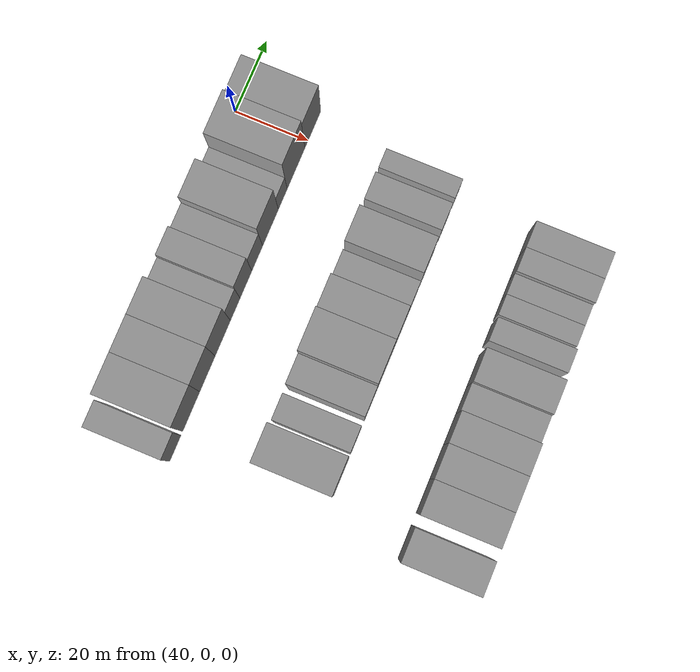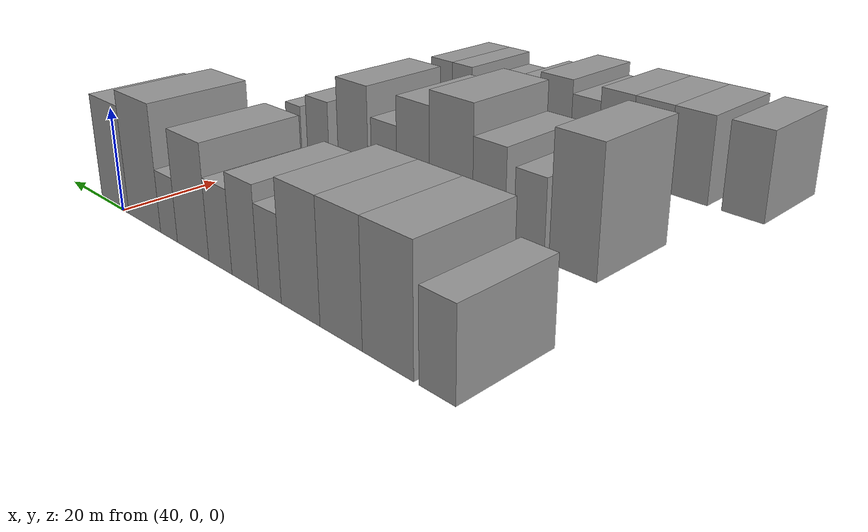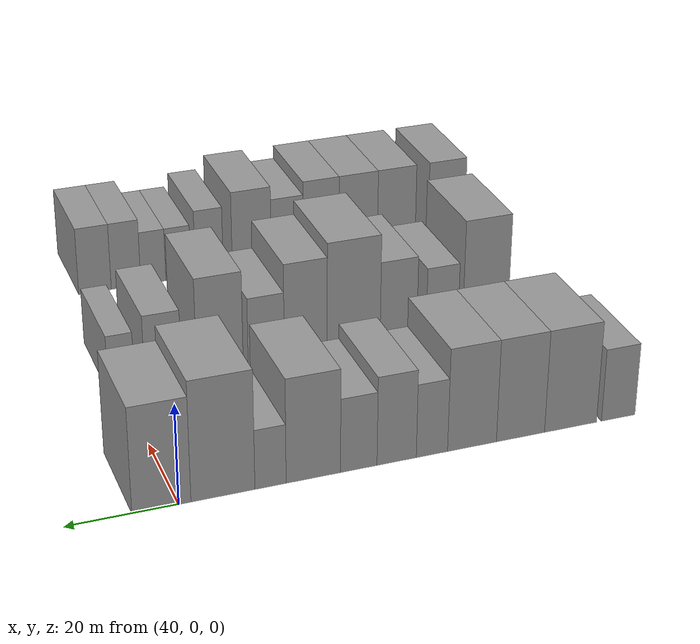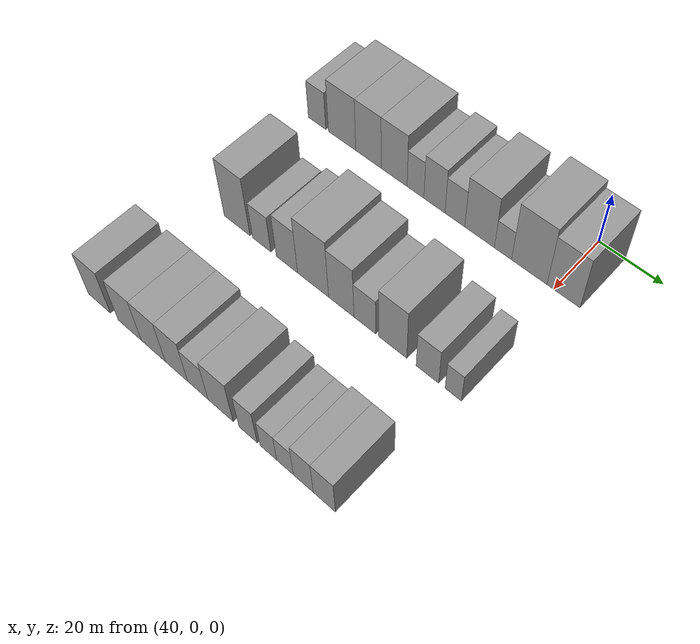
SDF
<sdf version="1.6">
 <world name="default">
  <model name="building_31">
   <static>1</static>
   <pose>50.0000 -83.5519 0 0.000000 0.000000 0.000000</pose>
   <link name="link">
    <pose>0 0 7.50 0 0 0</pose>
    <collision name="collision"><geometry><box><size>20.0000 6.8373 15.0000</size></box></geometry></collision>
    <visual name="visual">
     <cast_shadows>0</cast_shadows>
     <geometry><box><size>20.0000 6.8373 15.0000</size></box></geometry>
     <material>
      <script>
       <uri>model://grey_wall/materials/scripts</uri>
       <uri>model://grey_wall/materials/textures</uri>
       <name>vrc/grey_wall</name>
      </script>
     </material>
    </visual>
   </link>
  </model>
  <model name="building_32">
   <static>1</static>
   <pose>50.0000 -73.8972 0 0.000000 0.000000 0.000000</pose>
   <link name="link">
    <pose>0 0 10.50 0 0 0</pose>
    <collision name="collision"><geometry><box><size>20.0000 10.4721 21.0000</size></box></geometry></collision>
    <visual name="visual">
     <cast_shadows>0</cast_shadows>
     <geometry><box><size>20.0000 10.4721 21.0000</size></box></geometry>
     <material>
      <script>
       <uri>model://grey_wall/materials/scripts</uri>
       <uri>model://grey_wall/materials/textures</uri>
       <name>vrc/grey_wall</name>
      </script>
     </material>
    </visual>
   </link>
  </model>
  <model name="building_33">
   <static>1</static>
   <pose>50.0000 -63.8988 0 0.000000 0.000000 0.000000</pose>
   <link name="link">
    <pose>0 0 10.50 0 0 0</pose>
    <collision name="collision"><geometry><box><size>20.0000 9.5246 21.0000</size></box></geometry></collision>
    <visual name="visual">
     <cast_shadows>0</cast_shadows>
     <geometry><box><size>20.0000 9.5246 21.0000</size></box></geometry>
     <material>
      <script>
       <uri>model://grey_wall/materials/scripts</uri>
       <uri>model://grey_wall/materials/textures</uri>
       <name>vrc/grey_wall</name>
      </script>
     </material>
    </visual>
   </link>
  </model>
  <model name="building_34">
   <static>1</static>
   <pose>50.0000 -54.3746 0 0.000000 0.000000 0.000000</pose>
   <link name="link">
    <pose>0 0 10.50 0 0 0</pose>
    <collision name="collision"><geometry><box><size>20.0000 9.5240 21.0000</size></box></geometry></collision>
    <visual name="visual">
     <cast_shadows>0</cast_shadows>
     <geometry><box><size>20.0000 9.5240 21.0000</size></box></geometry>
     <material>
      <script>
       <uri>model://grey_wall/materials/scripts</uri>
       <uri>model://grey_wall/materials/textures</uri>
       <name>vrc/grey_wall</name>
      </script>
     </material>
    </visual>
   </link>
  </model>
  <model name="building_35">
   <static>1</static>
   <pose>50.0000 -46.6111 0 0.000000 0.000000 0.000000</pose>
   <link name="link">
    <pose>0 0 7.50 0 0 0</pose>
    <collision name="collision"><geometry><box><size>20.0000 6.0030 15.0000</size></box></geometry></collision>
    <visual name="visual">
     <cast_shadows>0</cast_shadows>
     <geometry><box><size>20.0000 6.0030 15.0000</size></box></geometry>
     <material>
      <script>
       <uri>model://grey_wall/materials/scripts</uri>
       <uri>model://grey_wall/materials/textures</uri>
       <name>vrc/grey_wall</name>
      </script>
     </material>
    </visual>
   </link>
  </model>
  <model name="building_36">
   <static>1</static>
   <pose>50.0000 -39.8862 0 0.000000 0.000000 0.000000</pose>
   <link name="link">
    <pose>0 0 9.00 0 0 0</pose>
    <collision name="collision"><geometry><box><size>20.0000 7.4467 18.0000</size></box></geometry></collision>
    <visual name="visual">
     <cast_shadows>0</cast_shadows>
     <geometry><box><size>20.0000 7.4467 18.0000</size></box></geometry>
     <material>
      <script>
       <uri>model://grey_wall/materials/scripts</uri>
       <uri>model://grey_wall/materials/textures</uri>
       <name>vrc/grey_wall</name>
      </script>
     </material>
    </visual>
   </link>
  </model>
  <model name="building_37">
   <static>1</static>
   <pose>50.0000 -32.7455 0 0.000000 0.000000 0.000000</pose>
   <link name="link">
    <pose>0 0 7.50 0 0 0</pose>
    <collision name="collision"><geometry><box><size>20.0000 6.8346 15.0000</size></box></geometry></collision>
    <visual name="visual">
     <cast_shadows>0</cast_shadows>
     <geometry><box><size>20.0000 6.8346 15.0000</size></box></geometry>
     <material>
      <script>
       <uri>model://grey_wall/materials/scripts</uri>
       <uri>model://grey_wall/materials/textures</uri>
       <name>vrc/grey_wall</name>
      </script>
     </material>
    </visual>
   </link>
  </model>
  <model name="building_38">
   <static>1</static>
   <pose>50.0000 -24.3116 0 0.000000 0.000000 0.000000</pose>
   <link name="link">
    <pose>0 0 10.50 0 0 0</pose>
    <collision name="collision"><geometry><box><size>20.0000 10.0333 21.0000</size></box></geometry></collision>
    <visual name="visual">
     <cast_shadows>0</cast_shadows>
     <geometry><box><size>20.0000 10.0333 21.0000</size></box></geometry>
     <material>
      <script>
       <uri>model://grey_wall/materials/scripts</uri>
       <uri>model://grey_wall/materials/textures</uri>
       <name>vrc/grey_wall</name>
      </script>
     </material>
    </visual>
   </link>
  </model>
  <model name="building_39">
   <static>1</static>
   <pose>50.0000 -16.4530 0 0.000000 0.000000 0.000000</pose>
   <link name="link">
    <pose>0 0 6.00 0 0 0</pose>
    <collision name="collision"><geometry><box><size>20.0000 5.6837 12.0000</size></box></geometry></collision>
    <visual name="visual">
     <cast_shadows>0</cast_shadows>
     <geometry><box><size>20.0000 5.6837 12.0000</size></box></geometry>
     <material>
      <script>
       <uri>model://grey_wall/materials/scripts</uri>
       <uri>model://grey_wall/materials/textures</uri>
       <name>vrc/grey_wall</name>
      </script>
     </material>
    </visual>
   </link>
  </model>
  <model name="building_40">
   <static>1</static>
   <pose>50.0000 -7.8787 0 0.000000 0.000000 0.000000</pose>
   <link name="link">
    <pose>0 0 12.00 0 0 0</pose>
    <collision name="collision"><geometry><box><size>20.0000 11.4650 24.0000</size></box></geometry></collision>
    <visual name="visual">
     <cast_shadows>0</cast_shadows>
     <geometry><box><size>20.0000 11.4650 24.0000</size></box></geometry>
     <material>
      <script>
       <uri>model://grey_wall/materials/scripts</uri>
       <uri>model://grey_wall/materials/textures</uri>
       <name>vrc/grey_wall</name>
      </script>
     </material>
    </visual>
   </link>
  </model>
  <model name="building_41">
   <static>1</static>
   <pose>50.0000 3.0513 0 0.000000 0.000000 0.000000</pose>
   <link name="link">
    <pose>0 0 10.50 0 0 0</pose>
    <collision name="collision"><geometry><box><size>20.0000 10.3950 21.0000</size></box></geometry></collision>
    <visual name="visual">
     <cast_shadows>0</cast_shadows>
     <geometry><box><size>20.0000 10.3950 21.0000</size></box></geometry>
     <material>
      <script>
       <uri>model://grey_wall/materials/scripts</uri>
       <uri>model://grey_wall/materials/textures</uri>
       <name>vrc/grey_wall</name>
      </script>
     </material>
    </visual>
   </link>
  </model>
  <model name="building_108">
   <static>1</static>
   <pose>90.0000 -74.5335 0 0.000000 0.000000 0.000000</pose>
   <link name="link">
    <pose>0 0 12.00 0 0 0</pose>
    <collision name="collision"><geometry><box><size>20.0000 9.8252 24.0000</size></box></geometry></collision>
    <visual name="visual">
     <cast_shadows>0</cast_shadows>
     <geometry><box><size>20.0000 9.8252 24.0000</size></box></geometry>
     <material>
      <script>
       <uri>model://grey_wall/materials/scripts</uri>
       <uri>model://grey_wall/materials/textures</uri>
       <name>vrc/grey_wall</name>
      </script>
     </material>
    </visual>
   </link>
  </model>
  <model name="building_109">
   <static>1</static>
   <pose>90.0000 -65.2203 0 0.000000 0.000000 0.000000</pose>
   <link name="link">
    <pose>0 0 7.50 0 0 0</pose>
    <collision name="collision"><geometry><box><size>20.0000 6.8013 15.0000</size></box></geometry></collision>
    <visual name="visual">
     <cast_shadows>0</cast_shadows>
     <geometry><box><size>20.0000 6.8013 15.0000</size></box></geometry>
     <material>
      <script>
       <uri>model://grey_wall/materials/scripts</uri>
       <uri>model://grey_wall/materials/textures</uri>
       <name>vrc/grey_wall</name>
      </script>
     </material>
    </visual>
   </link>
  </model>
  <model name="building_110">
   <static>1</static>
   <pose>90.0000 -55.9528 0 0.000000 0.000000 0.000000</pose>
   <link name="link">
    <pose>0 0 9.00 0 0 0</pose>
    <collision name="collision"><geometry><box><size>20.0000 7.7336 18.0000</size></box></geometry></collision>
    <visual name="visual">
     <cast_shadows>0</cast_shadows>
     <geometry><box><size>20.0000 7.7336 18.0000</size></box></geometry>
     <material>
      <script>
       <uri>model://grey_wall/materials/scripts</uri>
       <uri>model://grey_wall/materials/textures</uri>
       <name>vrc/grey_wall</name>
      </script>
     </material>
    </visual>
   </link>
  </model>
  <model name="building_111">
   <static>1</static>
   <pose>90.0000 -46.5802 0 0.000000 0.000000 0.000000</pose>
   <link name="link">
    <pose>0 0 12.00 0 0 0</pose>
    <collision name="collision"><geometry><box><size>20.0000 11.0116 24.0000</size></box></geometry></collision>
    <visual name="visual">
     <cast_shadows>0</cast_shadows>
     <geometry><box><size>20.0000 11.0116 24.0000</size></box></geometry>
     <material>
      <script>
       <uri>model://grey_wall/materials/scripts</uri>
       <uri>model://grey_wall/materials/textures</uri>
       <name>vrc/grey_wall</name>
      </script>
     </material>
    </visual>
   </link>
  </model>
  <model name="building_112">
   <static>1</static>
   <pose>90.0000 -36.6796 0 0.000000 0.000000 0.000000</pose>
   <link name="link">
    <pose>0 0 10.50 0 0 0</pose>
    <collision name="collision"><geometry><box><size>20.0000 8.7895 21.0000</size></box></geometry></collision>
    <visual name="visual">
     <cast_shadows>0</cast_shadows>
     <geometry><box><size>20.0000 8.7895 21.0000</size></box></geometry>
     <material>
      <script>
       <uri>model://grey_wall/materials/scripts</uri>
       <uri>model://grey_wall/materials/textures</uri>
       <name>vrc/grey_wall</name>
      </script>
     </material>
    </visual>
   </link>
  </model>
  <model name="building_113">
   <static>1</static>
   <pose>90.0000 -28.6344 0 0.000000 0.000000 0.000000</pose>
   <link name="link">
    <pose>0 0 7.50 0 0 0</pose>
    <collision name="collision"><geometry><box><size>20.0000 7.3010 15.0000</size></box></geometry></collision>
    <visual name="visual">
     <cast_shadows>0</cast_shadows>
     <geometry><box><size>20.0000 7.3010 15.0000</size></box></geometry>
     <material>
      <script>
       <uri>model://grey_wall/materials/scripts</uri>
       <uri>model://grey_wall/materials/textures</uri>
       <name>vrc/grey_wall</name>
      </script>
     </material>
    </visual>
   </link>
  </model>
  <model name="building_114">
   <static>1</static>
   <pose>90.0000 -19.3513 0 0.000000 0.000000 0.000000</pose>
   <link name="link">
    <pose>0 0 10.50 0 0 0</pose>
    <collision name="collision"><geometry><box><size>20.0000 9.2651 21.0000</size></box></geometry></collision>
    <visual name="visual">
     <cast_shadows>0</cast_shadows>
     <geometry><box><size>20.0000 9.2651 21.0000</size></box></geometry>
     <material>
      <script>
       <uri>model://grey_wall/materials/scripts</uri>
       <uri>model://grey_wall/materials/textures</uri>
       <name>vrc/grey_wall</name>
      </script>
     </material>
    </visual>
   </link>
  </model>
  <model name="building_115">
   <static>1</static>
   <pose>90.0000 -8.1281 0 0.000000 0.000000 0.000000</pose>
   <link name="link">
    <pose>0 0 7.50 0 0 0</pose>
    <collision name="collision"><geometry><box><size>20.0000 7.1813 15.0000</size></box></geometry></collision>
    <visual name="visual">
     <cast_shadows>0</cast_shadows>
     <geometry><box><size>20.0000 7.1813 15.0000</size></box></geometry>
     <material>
      <script>
       <uri>model://grey_wall/materials/scripts</uri>
       <uri>model://grey_wall/materials/textures</uri>
       <name>vrc/grey_wall</name>
      </script>
     </material>
    </visual>
   </link>
  </model>
  <model name="building_116">
   <static>1</static>
   <pose>90.0000 0.0035 0 0.000000 0.000000 0.000000</pose>
   <link name="link">
    <pose>0 0 6.00 0 0 0</pose>
    <collision name="collision"><geometry><box><size>20.0000 5.0818 12.0000</size></box></geometry></collision>
    <visual name="visual">
     <cast_shadows>0</cast_shadows>
     <geometry><box><size>20.0000 5.0818 12.0000</size></box></geometry>
     <material>
      <script>
       <uri>model://grey_wall/materials/scripts</uri>
       <uri>model://grey_wall/materials/textures</uri>
       <name>vrc/grey_wall</name>
      </script>
     </material>
    </visual>
   </link>
  </model>
  <model name="building_192">
   <static>1</static>
   <pose>130.0000 -82.8956 0 0.000000 0.000000 0.000000</pose>
   <link name="link">
    <pose>0 0 9.00 0 0 0</pose>
    <collision name="collision"><geometry><box><size>20.0000 8.6345 18.0000</size></box></geometry></collision>
    <visual name="visual">
     <cast_shadows>0</cast_shadows>
     <geometry><box><size>20.0000 8.6345 18.0000</size></box></geometry>
     <material>
      <script>
       <uri>model://grey_wall/materials/scripts</uri>
       <uri>model://grey_wall/materials/textures</uri>
       <name>vrc/grey_wall</name>
      </script>
     </material>
    </visual>
   </link>
  </model>
  <model name="building_193">
   <static>1</static>
   <pose>130.0000 -71.1852 0 0.000000 0.000000 0.000000</pose>
   <link name="link">
    <pose>0 0 9.00 0 0 0</pose>
    <collision name="collision"><geometry><box><size>20.0000 8.7862 18.0000</size></box></geometry></collision>
    <visual name="visual">
     <cast_shadows>0</cast_shadows>
     <geometry><box><size>20.0000 8.7862 18.0000</size></box></geometry>
     <material>
      <script>
       <uri>model://grey_wall/materials/scripts</uri>
       <uri>model://grey_wall/materials/textures</uri>
       <name>vrc/grey_wall</name>
      </script>
     </material>
    </visual>
   </link>
  </model>
  <model name="building_194">
   <static>1</static>
   <pose>130.0000 -62.3657 0 0.000000 0.000000 0.000000</pose>
   <link name="link">
    <pose>0 0 9.00 0 0 0</pose>
    <collision name="collision"><geometry><box><size>20.0000 8.8528 18.0000</size></box></geometry></collision>
    <visual name="visual">
     <cast_shadows>0</cast_shadows>
     <geometry><box><size>20.0000 8.8528 18.0000</size></box></geometry>
     <material>
      <script>
       <uri>model://grey_wall/materials/scripts</uri>
       <uri>model://grey_wall/materials/textures</uri>
       <name>vrc/grey_wall</name>
      </script>
     </material>
    </visual>
   </link>
  </model>
  <model name="building_195">
   <static>1</static>
   <pose>130.0000 -53.8906 0 0.000000 0.000000 0.000000</pose>
   <link name="link">
    <pose>0 0 9.00 0 0 0</pose>
    <collision name="collision"><geometry><box><size>20.0000 8.0976 18.0000</size></box></geometry></collision>
    <visual name="visual">
     <cast_shadows>0</cast_shadows>
     <geometry><box><size>20.0000 8.0976 18.0000</size></box></geometry>
     <material>
      <script>
       <uri>model://grey_wall/materials/scripts</uri>
       <uri>model://grey_wall/materials/textures</uri>
       <name>vrc/grey_wall</name>
      </script>
     </material>
    </visual>
   </link>
  </model>
  <model name="building_196">
   <static>1</static>
   <pose>130.0000 -46.2596 0 0.000000 0.000000 0.000000</pose>
   <link name="link">
    <pose>0 0 7.50 0 0 0</pose>
    <collision name="collision"><geometry><box><size>20.0000 7.1642 15.0000</size></box></geometry></collision>
    <visual name="visual">
     <cast_shadows>0</cast_shadows>
     <geometry><box><size>20.0000 7.1642 15.0000</size></box></geometry>
     <material>
      <script>
       <uri>model://grey_wall/materials/scripts</uri>
       <uri>model://grey_wall/materials/textures</uri>
       <name>vrc/grey_wall</name>
      </script>
     </material>
    </visual>
   </link>
  </model>
  <model name="building_197">
   <static>1</static>
   <pose>130.0000 -38.3588 0 0.000000 0.000000 0.000000</pose>
   <link name="link">
    <pose>0 0 9.00 0 0 0</pose>
    <collision name="collision"><geometry><box><size>20.0000 8.6375 18.0000</size></box></geometry></collision>
    <visual name="visual">
     <cast_shadows>0</cast_shadows>
     <geometry><box><size>20.0000 8.6375 18.0000</size></box></geometry>
     <material>
      <script>
       <uri>model://grey_wall/materials/scripts</uri>
       <uri>model://grey_wall/materials/textures</uri>
       <name>vrc/grey_wall</name>
      </script>
     </material>
    </visual>
   </link>
  </model>
  <model name="building_198">
   <static>1</static>
   <pose>130.0000 -28.9939 0 0.000000 0.000000 0.000000</pose>
   <link name="link">
    <pose>0 0 7.50 0 0 0</pose>
    <collision name="collision"><geometry><box><size>20.0000 6.0922 15.0000</size></box></geometry></collision>
    <visual name="visual">
     <cast_shadows>0</cast_shadows>
     <geometry><box><size>20.0000 6.0922 15.0000</size></box></geometry>
     <material>
      <script>
       <uri>model://grey_wall/materials/scripts</uri>
       <uri>model://grey_wall/materials/textures</uri>
       <name>vrc/grey_wall</name>
      </script>
     </material>
    </visual>
   </link>
  </model>
  <model name="building_199">
   <static>1</static>
   <pose>130.0000 -22.2406 0 0.000000 0.000000 0.000000</pose>
   <link name="link">
    <pose>0 0 6.00 0 0 0</pose>
    <collision name="collision"><geometry><box><size>20.0000 5.4146 12.0000</size></box></geometry></collision>
    <visual name="visual">
     <cast_shadows>0</cast_shadows>
     <geometry><box><size>20.0000 5.4146 12.0000</size></box></geometry>
     <material>
      <script>
       <uri>model://grey_wall/materials/scripts</uri>
       <uri>model://grey_wall/materials/textures</uri>
       <name>vrc/grey_wall</name>
      </script>
     </material>
    </visual>
   </link>
  </model>
  <model name="building_200">
   <static>1</static>
   <pose>130.0000 -16.8322 0 0.000000 0.000000 0.000000</pose>
   <link name="link">
    <pose>0 0 6.00 0 0 0</pose>
    <collision name="collision"><geometry><box><size>20.0000 5.4021 12.0000</size></box></geometry></collision>
    <visual name="visual">
     <cast_shadows>0</cast_shadows>
     <geometry><box><size>20.0000 5.4021 12.0000</size></box></geometry>
     <material>
      <script>
       <uri>model://grey_wall/materials/scripts</uri>
       <uri>model://grey_wall/materials/textures</uri>
       <name>vrc/grey_wall</name>
      </script>
     </material>
    </visual>
   </link>
  </model>
  <model name="building_201">
   <static>1</static>
   <pose>130.0000 -10.9844 0 0.000000 0.000000 0.000000</pose>
   <link name="link">
    <pose>0 0 7.50 0 0 0</pose>
    <collision name="collision"><geometry><box><size>20.0000 6.2934 15.0000</size></box></geometry></collision>
    <visual name="visual">
     <cast_shadows>0</cast_shadows>
     <geometry><box><size>20.0000 6.2934 15.0000</size></box></geometry>
     <material>
      <script>
       <uri>model://grey_wall/materials/scripts</uri>
       <uri>model://grey_wall/materials/textures</uri>
       <name>vrc/grey_wall</name>
      </script>
     </material>
    </visual>
   </link>
  </model>
  <model name="building_202">
   <static>1</static>
   <pose>130.0000 -4.4074 0 0.000000 0.000000 0.000000</pose>
   <link name="link">
    <pose>0 0 7.50 0 0 0</pose>
    <collision name="collision"><geometry><box><size>20.0000 6.8606 15.0000</size></box></geometry></collision>
    <visual name="visual">
     <cast_shadows>0</cast_shadows>
     <geometry><box><size>20.0000 6.8606 15.0000</size></box></geometry>
     <material>
      <script>
       <uri>model://grey_wall/materials/scripts</uri>
       <uri>model://grey_wall/materials/textures</uri>
       <name>vrc/grey_wall</name>
      </script>
     </material>
    </visual>
   </link>
  </model>
 </world>
</sdf>
